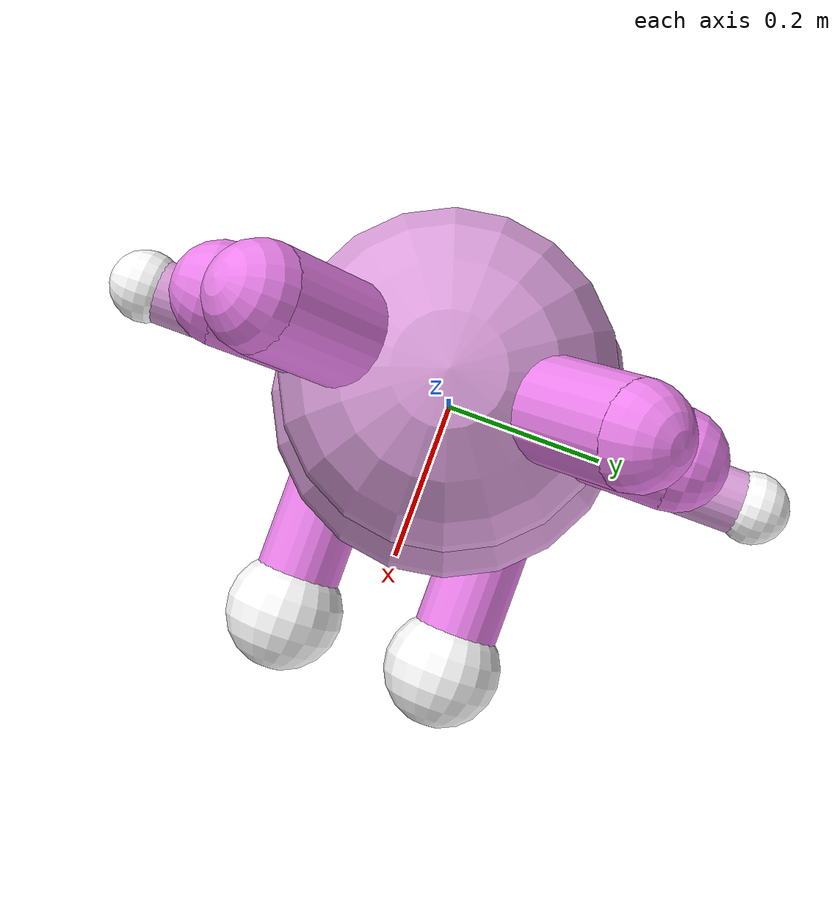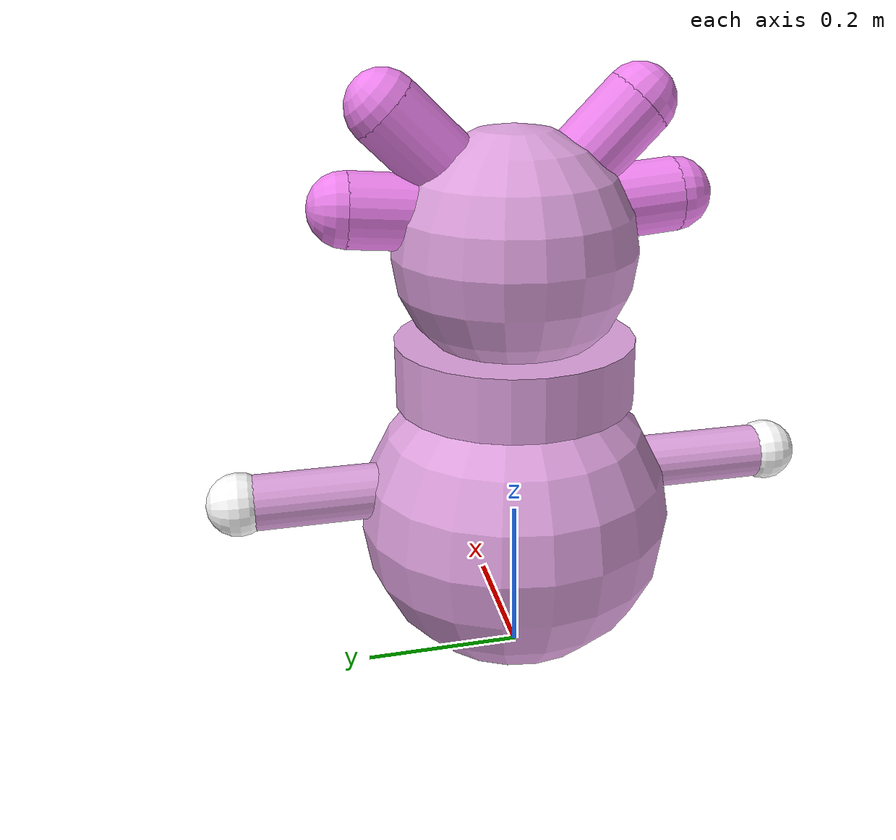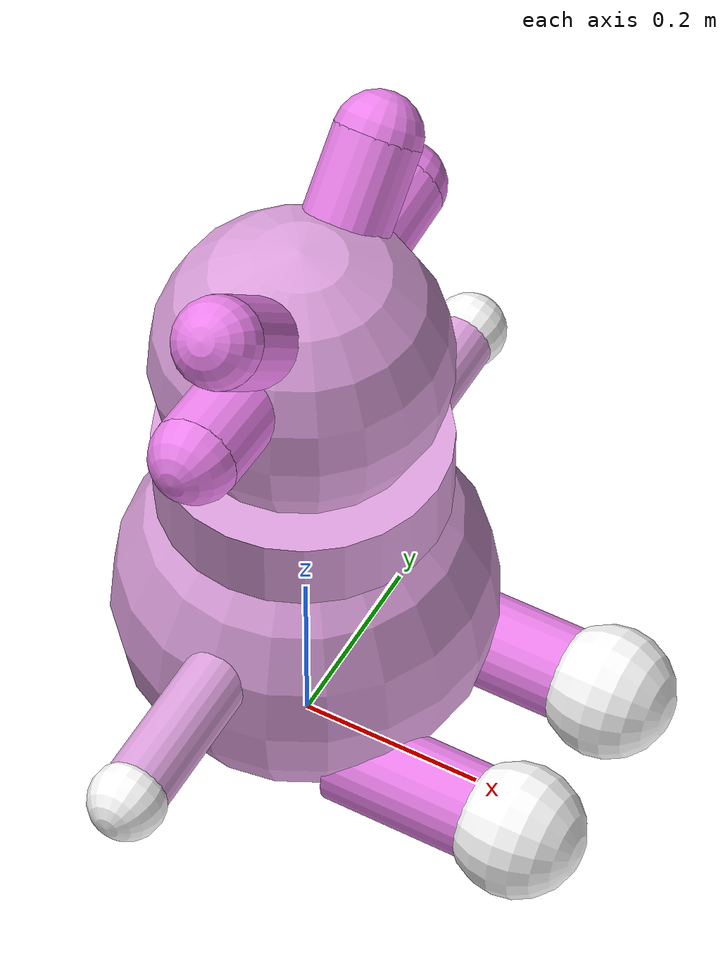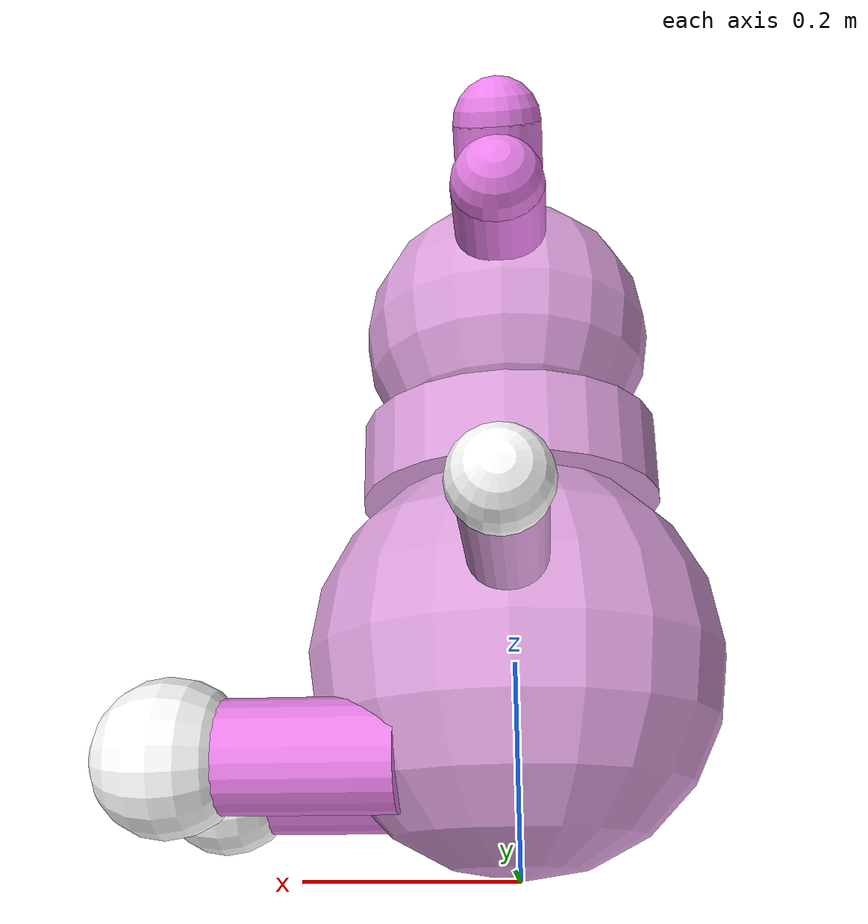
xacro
<?xml version="1.0" ?>
<!-- |    This document was autogenerated by xacro from robot.urdf                     | -->
<!-- |    EDITING THIS FILE BY HAND IS NOT RECOMMENDED                                 | -->
<robot name="Moonzy" xmlns:xacro="http://www.ros.org/wiki/xacro">
  <!-- Some plugins for gazebo -->
  <gazebo>
    <plugin filename="gz-sim-joint-state-publisher-system" name="gz::sim::systems::JointStatePublisher">
        </plugin>
    <plugin filename="gz-sim-diff-drive-system" name="gz::sim::systems::DiffDrive">
      <left_joint>left_wheel_joint</left_joint>
      <right_joint>right_wheel_joint</right_joint>
      <child_frame_id>Moonzy/base_link</child_frame_id>
      <wheel_separation>0.2</wheel_separation>
      <wheel_radius>0.07</wheel_radius>
      <odom_publish_frequency>10</odom_publish_frequency>
    </plugin>
  </gazebo>
  <!-- Define materials -->
  <material name="violet">
    <color rgba="0.9333333333333333 0.5098039215686274 0.9333333333333333 1"/>
  </material>
  <material name="plum">
    <color rgba="0.8666666666666667 0.6274509803921569 0.8666666666666667 1"/>
  </material>
  <material name="white">
    <color rgba="1 1 1 1"/>
  </material>
  <material name="green">
    <color rgba="0 1 0 1"/>
  </material>
  <!-- Define all the links and joints -->
  <!-- Define base_link -->
  <link name="base_link">
  </link>
  <link name="stomach">
    <visual>
      <geometry>
        <sphere radius="0.2"/>
      </geometry>
      <material name="plum"/>
    </visual>
    <collision>
      <geometry>
        <sphere radius="0.2"/>
      </geometry>
    </collision>
    <inertial>
      <mass value="5"/>
      <inertia ixx="0.08000000000000002" ixy="0.0" ixz="0.0" iyy="0.08000000000000002" iyz="0.0" izz="0.08000000000000002"/>
    </inertial>
  </link>
  <joint name="stomach_to_base" type="fixed">
    <parent link="base_link"/>
    <child link="stomach"/>
    <origin xyz="0 0 0.2"/>
  </joint>
  <link name="right_leg">
    <visual>
      <origin xyz="0 0 0.1"/>
      <geometry>
        <cylinder length="0.2" radius="0.05"/>
      </geometry>
      <material name="violet"/>
    </visual>
    <collision>
      <origin xyz="0 0 0.1"/>
      <geometry>
        <cylinder length="0.2" radius="0.05"/>
      </geometry>
    </collision>
    <inertial>
      <origin xyz="0 0 0.1"/>
      <mass value="1"/>
      <inertia ixx="0.003958333333333334" ixy="0" ixz="0" iyy="0.003958333333333334" iyz="0" izz="0.0012500000000000002"/>
    </inertial>
  </link>
  <joint name="stomach_to_right_leg" type="revolute">
    <axis xyz="0 1 0"/>
    <limit effort="1000.0" lower="-0.7853981633974483" upper="1.5707963267948966" velocity="0.5"/>
    <parent link="stomach"/>
    <child link="right_leg"/>
    <origin rpy="0 1.5707963267948966 0" xyz="0.1 -0.1 -0.1"/>
  </joint>
  <link name="left_leg">
    <visual>
      <origin xyz="0 0 0.1"/>
      <geometry>
        <cylinder length="0.2" radius="0.05"/>
      </geometry>
      <material name="violet"/>
    </visual>
    <collision>
      <origin xyz="0 0 0.1"/>
      <geometry>
        <cylinder length="0.2" radius="0.05"/>
      </geometry>
    </collision>
    <inertial>
      <origin xyz="0 0 0.1"/>
      <mass value="1"/>
      <inertia ixx="0.003958333333333334" ixy="0" ixz="0" iyy="0.003958333333333334" iyz="0" izz="0.0012500000000000002"/>
    </inertial>
  </link>
  <joint name="stomach_to_left_leg" type="revolute">
    <axis xyz="0 1 0"/>
    <limit effort="1000.0" lower="-0.7853981633974483" upper="1.5707963267948966" velocity="0.5"/>
    <parent link="stomach"/>
    <child link="left_leg"/>
    <origin rpy="0 1.5707963267948966 0" xyz="0.1 0.1 -0.1"/>
  </joint>
  <link name="right_wheel">
    <visual>
      <geometry>
        <sphere radius="0.07"/>
      </geometry>
      <material name="white"/>
    </visual>
    <collision>
      <geometry>
        <sphere radius="0.07"/>
      </geometry>
    </collision>
    <inertial>
      <mass value="0.2"/>
      <inertia ixx="0.00039200000000000015" ixy="0.0" ixz="0.0" iyy="0.00039200000000000015" iyz="0.0" izz="0.00039200000000000015"/>
    </inertial>
  </link>
  <joint name="right_wheel_joint" type="continuous">
    <axis xyz="0 1 0"/>
    <parent link="right_leg"/>
    <child link="right_wheel"/>
    <origin xyz="0 0 0.2"/>
  </joint>
  <link name="left_wheel">
    <visual>
      <geometry>
        <sphere radius="0.07"/>
      </geometry>
      <material name="white"/>
    </visual>
    <collision>
      <geometry>
        <sphere radius="0.07"/>
      </geometry>
    </collision>
    <inertial>
      <mass value="0.2"/>
      <inertia ixx="0.00039200000000000015" ixy="0.0" ixz="0.0" iyy="0.00039200000000000015" iyz="0.0" izz="0.00039200000000000015"/>
    </inertial>
  </link>
  <joint name="left_wheel_joint" type="continuous">
    <axis xyz="0 1 0"/>
    <parent link="left_leg"/>
    <child link="left_wheel"/>
    <origin xyz="0 0 0.2"/>
  </joint>
  <link name="right_arm">
    <visual>
      <origin xyz="0 0 0.1"/>
      <geometry>
        <cylinder length="0.2" radius="0.035"/>
      </geometry>
      <material name="plum"/>
    </visual>
    <collision>
      <origin xyz="0 0 0.1"/>
      <geometry>
        <cylinder length="0.2" radius="0.035"/>
      </geometry>
    </collision>
    <inertial>
      <origin xyz="0 0 0.1"/>
      <mass value="0.8"/>
      <inertia ixx="0.002911666666666667" ixy="0" ixz="0" iyy="0.002911666666666667" iyz="0" izz="0.0004900000000000001"/>
    </inertial>
  </link>
  <joint name="right_arm_joint" type="revolute">
    <axis xyz="1 0 0"/>
    <limit effort="1000.0" lower="-0.7853981633974483" upper="0.7853981633974483" velocity="0.5"/>
    <parent link="stomach"/>
    <child link="right_arm"/>
    <origin rpy="1.5707963267948966 0 0" xyz="0 -0.15000000000000002 0.05"/>
  </joint>
  <link name="right_paw">
    <visual>
      <geometry>
        <sphere radius="0.04"/>
      </geometry>
      <material name="white"/>
    </visual>
    <collision>
      <geometry>
        <sphere radius="0.04"/>
      </geometry>
    </collision>
    <inertial>
      <mass value="0.1"/>
      <inertia ixx="6.400000000000001e-05" ixy="0.0" ixz="0.0" iyy="6.400000000000001e-05" iyz="0.0" izz="6.400000000000001e-05"/>
    </inertial>
  </link>
  <joint name="right_paw_joint" type="fixed">
    <parent link="right_arm"/>
    <child link="right_paw"/>
    <origin xyz="0 0 0.2"/>
  </joint>
  <link name="left_arm">
    <visual>
      <origin xyz="0 0 -0.1"/>
      <geometry>
        <cylinder length="0.2" radius="0.035"/>
      </geometry>
      <material name="plum"/>
    </visual>
    <collision>
      <origin xyz="0 0 -0.1"/>
      <geometry>
        <cylinder length="0.2" radius="0.035"/>
      </geometry>
    </collision>
    <inertial>
      <origin xyz="0 0 -0.1"/>
      <mass value="0.8"/>
      <inertia ixx="0.002911666666666667" ixy="0" ixz="0" iyy="0.002911666666666667" iyz="0" izz="0.0004900000000000001"/>
    </inertial>
  </link>
  <joint name="left_arm_joint" type="revolute">
    <axis xyz="1 0 0"/>
    <limit effort="1000.0" lower="-0.7853981633974483" upper="0.7853981633974483" velocity="0.5"/>
    <parent link="stomach"/>
    <child link="left_arm"/>
    <origin rpy="1.5707963267948966 0 0" xyz="0 0.15000000000000002 0.05"/>
  </joint>
  <link name="left_paw">
    <visual>
      <geometry>
        <sphere radius="0.04"/>
      </geometry>
      <material name="white"/>
    </visual>
    <collision>
      <geometry>
        <sphere radius="0.04"/>
      </geometry>
    </collision>
    <inertial>
      <mass value="0.1"/>
      <inertia ixx="6.400000000000001e-05" ixy="0.0" ixz="0.0" iyy="6.400000000000001e-05" iyz="0.0" izz="6.400000000000001e-05"/>
    </inertial>
  </link>
  <joint name="left_paw_joint" type="fixed">
    <parent link="left_arm"/>
    <child link="left_paw"/>
    <origin xyz="0 0 -0.2"/>
  </joint>
  <!-- Define neck -->
  <link name="neck">
    <visual>
      <geometry>
        <cylinder length="0.08" radius="0.15"/>
      </geometry>
      <material name="plum"/>
    </visual>
    <collision>
      <geometry>
        <cylinder length="0.08" radius="0.15"/>
      </geometry>
    </collision>
    <inertial>
      <mass value="1.5"/>
      <inertia ixx="0.0092375" ixy="0" ixz="0" iyy="0.0092375" iyz="0" izz="0.016875"/>
    </inertial>
  </link>
  <joint name="neck_joint" type="fixed">
    <parent link="stomach"/>
    <child link="neck"/>
    <origin xyz="0 0 0.2"/>
  </joint>
  <!-- Define head -->
  <link name="head">
    <visual>
      <geometry>
        <sphere radius="0.15"/>
      </geometry>
      <material name="plum"/>
    </visual>
    <collision>
      <geometry>
        <sphere radius="0.15"/>
      </geometry>
    </collision>
    <inertial>
      <mass value="3"/>
      <inertia ixx="0.027000000000000003" ixy="0.0" ixz="0.0" iyy="0.027000000000000003" iyz="0.0" izz="0.027000000000000003"/>
    </inertial>
  </link>
  <joint name="head_swivel" type="revolute">
    <parent link="neck"/>
    <child link="head"/>
    <axis xyz="0 0 1"/>
    <limit effort="1000.0" lower="-1.5707963267948966" upper="1.5707963267948966" velocity="0.5"/>
    <origin xyz="0 0 0.15"/>
  </joint>
  <link name="right_lower_ear">
    <visual>
      <origin xyz="0 0 0.05"/>
      <geometry>
        <cylinder length="0.1" radius="0.045"/>
      </geometry>
      <material name="violet"/>
    </visual>
    <collision>
      <origin xyz="0 0 0.05"/>
      <geometry>
        <cylinder length="0.1" radius="0.045"/>
      </geometry>
    </collision>
    <inertial>
      <origin xyz="0 0 0.05"/>
      <mass value="0.5"/>
      <inertia ixx="0.0006697916666666667" ixy="0" ixz="0" iyy="0.0006697916666666667" iyz="0" izz="0.00050625"/>
    </inertial>
  </link>
  <joint name="right_lower_ear_joint" type="revolute">
    <axis xyz="1 0 0"/>
    <limit effort="1000.0" lower="-0.05235987755982989" upper="0.05235987755982989" velocity="0.5"/>
    <parent link="head"/>
    <child link="right_lower_ear"/>
    <origin rpy="1.4835298641951802 0 0" xyz="0 -0.1 0.05"/>
  </joint>
  <link name="right_lower_ear_tip">
    <visual>
      <geometry>
        <sphere radius="0.045"/>
      </geometry>
      <material name="violet"/>
    </visual>
    <collision>
      <geometry>
        <sphere radius="0.045"/>
      </geometry>
    </collision>
    <inertial>
      <mass value="0.5"/>
      <inertia ixx="0.000405" ixy="0.0" ixz="0.0" iyy="0.000405" iyz="0.0" izz="0.000405"/>
    </inertial>
  </link>
  <joint name="right_lower_ear_tip_joint" type="fixed">
    <parent link="right_lower_ear"/>
    <child link="right_lower_ear_tip"/>
    <origin xyz="0 0 0.1"/>
  </joint>
  <link name="right_upper_ear">
    <visual>
      <origin xyz="0 0 0.05"/>
      <geometry>
        <cylinder length="0.1" radius="0.045"/>
      </geometry>
      <material name="violet"/>
    </visual>
    <collision>
      <origin xyz="0 0 0.05"/>
      <geometry>
        <cylinder length="0.1" radius="0.045"/>
      </geometry>
    </collision>
    <inertial>
      <origin xyz="0 0 0.05"/>
      <mass value="0.5"/>
      <inertia ixx="0.0006697916666666667" ixy="0" ixz="0" iyy="0.0006697916666666667" iyz="0" izz="0.00050625"/>
    </inertial>
  </link>
  <joint name="right_upper_ear_joint" type="revolute">
    <axis xyz="1 0 0"/>
    <limit effort="1000.0" lower="-0.05235987755982989" upper="0.05235987755982989" velocity="0.5"/>
    <parent link="head"/>
    <child link="right_upper_ear"/>
    <origin rpy="0.7853981633974483 0 0" xyz="0 -0.08 0.1"/>
  </joint>
  <link name="right_upper_ear_tip">
    <visual>
      <geometry>
        <sphere radius="0.045"/>
      </geometry>
      <material name="violet"/>
    </visual>
    <collision>
      <geometry>
        <sphere radius="0.045"/>
      </geometry>
    </collision>
    <inertial>
      <mass value="0.5"/>
      <inertia ixx="0.000405" ixy="0.0" ixz="0.0" iyy="0.000405" iyz="0.0" izz="0.000405"/>
    </inertial>
  </link>
  <joint name="right_upper_ear_tip_joint" type="fixed">
    <parent link="right_upper_ear"/>
    <child link="right_upper_ear_tip"/>
    <origin xyz="0 0 0.1"/>
  </joint>
  <link name="left_lower_ear">
    <visual>
      <origin xyz="0 0 -0.05"/>
      <geometry>
        <cylinder length="0.1" radius="0.045"/>
      </geometry>
      <material name="violet"/>
    </visual>
    <collision>
      <origin xyz="0 0 -0.05"/>
      <geometry>
        <cylinder length="0.1" radius="0.045"/>
      </geometry>
    </collision>
    <inertial>
      <origin xyz="0 0 -0.05"/>
      <mass value="0.5"/>
      <inertia ixx="0.0006697916666666667" ixy="0" ixz="0" iyy="0.0006697916666666667" iyz="0" izz="0.00050625"/>
    </inertial>
  </link>
  <joint name="left_lower_ear_joint" type="revolute">
    <axis xyz="1 0 0"/>
    <limit effort="1000.0" lower="-0.05235987755982989" upper="0.05235987755982989" velocity="0.5"/>
    <parent link="head"/>
    <child link="left_lower_ear"/>
    <origin rpy="1.6580627893946132 0 0" xyz="0 0.1 0.05"/>
  </joint>
  <link name="left_lower_ear_tip">
    <visual>
      <geometry>
        <sphere radius="0.045"/>
      </geometry>
      <material name="violet"/>
    </visual>
    <collision>
      <geometry>
        <sphere radius="0.045"/>
      </geometry>
    </collision>
    <inertial>
      <mass value="0.5"/>
      <inertia ixx="0.000405" ixy="0.0" ixz="0.0" iyy="0.000405" iyz="0.0" izz="0.000405"/>
    </inertial>
  </link>
  <joint name="left_lower_ear_tip_joint" type="fixed">
    <parent link="left_lower_ear"/>
    <child link="left_lower_ear_tip"/>
    <origin xyz="0 0 -0.1"/>
  </joint>
  <link name="left_upper_ear">
    <visual>
      <origin xyz="0 0 -0.05"/>
      <geometry>
        <cylinder length="0.1" radius="0.045"/>
      </geometry>
      <material name="violet"/>
    </visual>
    <collision>
      <origin xyz="0 0 -0.05"/>
      <geometry>
        <cylinder length="0.1" radius="0.045"/>
      </geometry>
    </collision>
    <inertial>
      <origin xyz="0 0 -0.05"/>
      <mass value="0.5"/>
      <inertia ixx="0.0006697916666666667" ixy="0" ixz="0" iyy="0.0006697916666666667" iyz="0" izz="0.00050625"/>
    </inertial>
  </link>
  <joint name="left_upper_ear_joint" type="revolute">
    <axis xyz="1 0 0"/>
    <limit effort="1000.0" lower="-0.05235987755982989" upper="0.05235987755982989" velocity="0.5"/>
    <parent link="head"/>
    <child link="left_upper_ear"/>
    <origin rpy="2.356194490192345 0 0" xyz="0 0.08 0.1"/>
  </joint>
  <link name="left_upper_ear_tip">
    <visual>
      <geometry>
        <sphere radius="0.045"/>
      </geometry>
      <material name="violet"/>
    </visual>
    <collision>
      <geometry>
        <sphere radius="0.045"/>
      </geometry>
    </collision>
    <inertial>
      <mass value="0.5"/>
      <inertia ixx="0.000405" ixy="0.0" ixz="0.0" iyy="0.000405" iyz="0.0" izz="0.000405"/>
    </inertial>
  </link>
  <joint name="left_upper_ear_tip_joint" type="fixed">
    <parent link="left_upper_ear"/>
    <child link="left_upper_ear_tip"/>
    <origin xyz="0 0 -0.1"/>
  </joint>
</robot>
